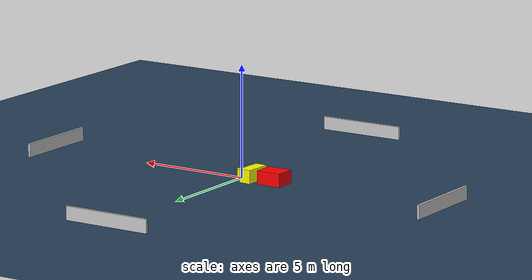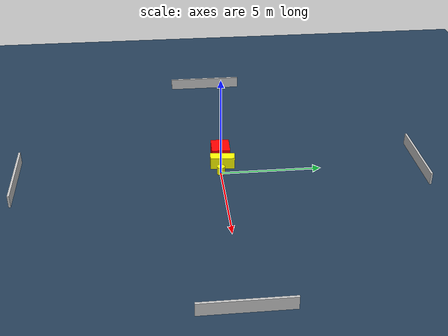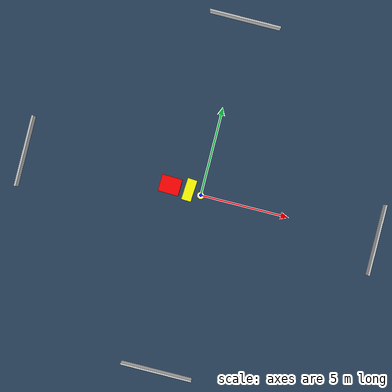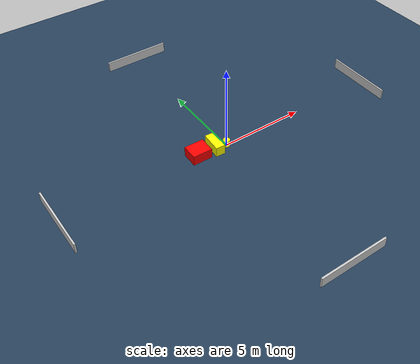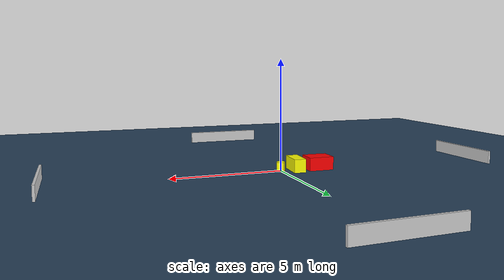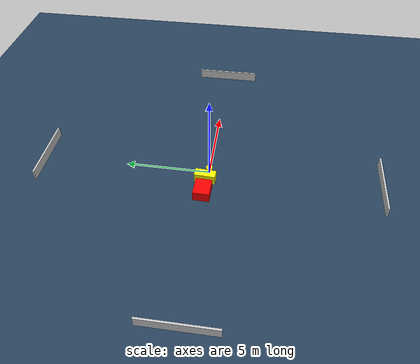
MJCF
<?xml version="1.0" ?>
<mujoco model="generated_environment">
  <option timestep="0.01" integrator="RK4" cone="elliptic"/>
  <default>
    <geom density="1"/>
  </default>
  <asset>
    <texture builtin="gradient" height="3072" name="skybox" rgb1="0.3 0.5 0.7" rgb2="0 0 0" type="skybox" width="512"/>
    <texture builtin="checker" height="300" name="groundplane" rgb1="0.2 0.3 0.4" rgb2="0.1 0.2 0.3" type="2d" width="300"/>
    <material name="groundplane" reflectance="0.2" texrepeat="5 5" texture="groundplane"/>
  </asset>
  <worldbody>
    <light dir="0 0 -1" directional="true" pos="0 0 1.5"/>
    <geom condim="3" friction="0.5 0.005 0.001" material="groundplane" name="floor" pos="0 0 0" size="0 0 0.05" type="plane"/>
    <body name="walls">
      <geom name="wall_1" condim="4" pos="-10.0 0.0 0.3" rgba="0.800000011920929 0.800000011920929 0.800000011920929 1.0" size="0.05 2.0 0.3" type="box"/>
      <geom name="wall_2" condim="4" pos="10.0 0.0 0.3" rgba="0.800000011920929 0.800000011920929 0.800000011920929 1.0" size="0.05 2.0 0.3" type="box"/>
      <geom name="wall_3" condim="4" pos="0.0 -10.0 0.3" rgba="0.800000011920929 0.800000011920929 0.800000011920929 1.0" size="2.0 0.05 0.3" type="box"/>
      <geom name="wall_4" condim="4" pos="0.0 10.0 0.3" rgba="0.800000011920929 0.800000011920929 0.800000011920929 1.0" size="2.0 0.05 0.3" type="box"/>
    </body>
    <body name="robot">
      <joint name="joint_x" type="slide" pos="0 0 0" axis="1 0 0"/>
      <joint name="joint_y" type="slide" pos="0 0 0" axis="0 1 0"/>
      <geom name="robot" type="cylinder" pos="0.0 0.0 0.2" size="0.2 0.2 0.0" mass="5.0" friction="1.0 0.005 0.0001" condim="4" rgba="1.0 1.0 0.0 1.0"/>
    </body>
    <body name="obstacle_1_movable">
      <geom name="obstacle_1_movable" condim="4" pos="-0.6780285990300604 0.1436446203520754 0.3" euler="0 0 356.2547818651473" friction="0.0 0.005 0.001" rgba="1.0 1.0 0.0 1.0" size="0.26713947781017167 0.6083556290289532 0.3" type="box" mass="0.1"/>
      <joint type="free"/>
    </body>
    <body name="obstacle_2_static">
      <geom name="obstacle_2_static" condim="4" pos="-1.760046947460132 0.14289103547295837 0.3" euler="0 0 178.55702227934495" friction="0.0 0.005 0.001" rgba="1.0 0.0 0.0 1.0" size="0.570733888122068 0.4686582804170436 0.3" type="box"/>
    </body>
  </worldbody>
  <actuator>
    <motor name="actuator_x" joint="joint_x" gear="1" ctrlrange="-1 1"/>
    <motor name="actuator_y" joint="joint_y" gear="1" ctrlrange="-1 1"/>
  </actuator>
</mujoco>
